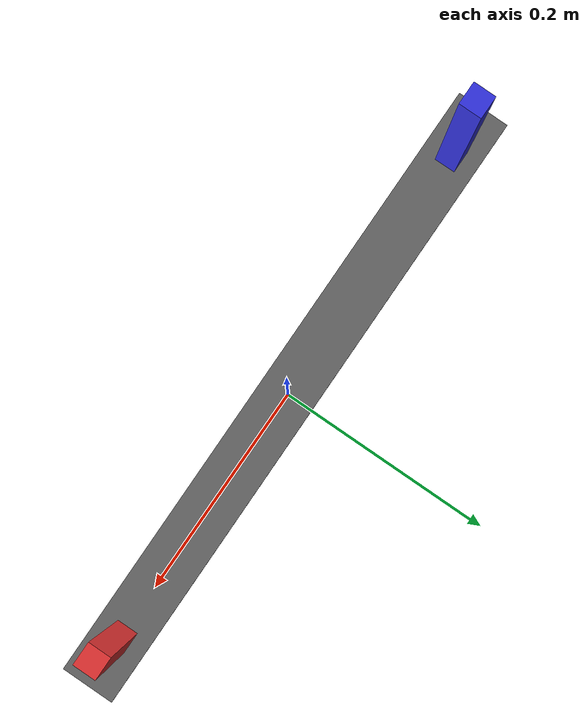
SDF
<?xml version="1.0" ?>
<!--
  Break Beam Sensor for Assembly Line
  Detects objects passing through the beam using a ray sensor.
-->
<sdf version="1.6">
  <model name="break_beam_sensor">
    <static>true</static>

    <!-- Emitter side -->
    <link name="emitter_link">
      <pose>-0.25 0 0.1 0 0 0</pose>

      <visual name="emitter_visual">
        <geometry>
          <box>
            <size>0.02 0.02 0.2</size>
          </box>
        </geometry>
        <material>
          <ambient>0.1 0.1 0.8 1</ambient>
          <diffuse>0.2 0.2 0.9 1</diffuse>
        </material>
      </visual>

      <collision name="emitter_collision">
        <geometry>
          <box>
            <size>0.02 0.02 0.2</size>
          </box>
        </geometry>
      </collision>

      <!-- Ray sensor for break beam detection -->
      <sensor name="break_beam" type="ray">
        <pose>0.01 0 0.05 0 0 0</pose>
        <always_on>true</always_on>
        <update_rate>100</update_rate>
        <visualize>true</visualize>

        <ray>
          <scan>
            <horizontal>
              <samples>1</samples>
              <resolution>1</resolution>
              <min_angle>0</min_angle>
              <max_angle>0</max_angle>
            </horizontal>
            <vertical>
              <samples>1</samples>
              <resolution>1</resolution>
              <min_angle>0</min_angle>
              <max_angle>0</max_angle>
            </vertical>
          </scan>
          <range>
            <min>0.01</min>
            <max>0.6</max>
            <resolution>0.001</resolution>
          </range>
          <noise>
            <type>gaussian</type>
            <mean>0</mean>
            <stddev>0.001</stddev>
          </noise>
        </ray>

        <plugin name="break_beam_sensor_plugin" filename="libgazebo_ros_ray_sensor.so">
          <ros>
            <namespace>station</namespace>
            <remapping>~/out:=break_beam</remapping>
          </ros>
          <output_type>sensor_msgs/Range</output_type>
          <frame_name>break_beam_frame</frame_name>
        </plugin>
      </sensor>
    </link>

    <!-- Receiver side -->
    <link name="receiver_link">
      <pose>0.25 0 0.1 0 0 0</pose>

      <visual name="receiver_visual">
        <geometry>
          <box>
            <size>0.02 0.02 0.2</size>
          </box>
        </geometry>
        <material>
          <ambient>0.8 0.1 0.1 1</ambient>
          <diffuse>0.9 0.2 0.2 1</diffuse>
        </material>
      </visual>

      <collision name="receiver_collision">
        <geometry>
          <box>
            <size>0.02 0.02 0.2</size>
          </box>
        </geometry>
      </collision>
    </link>

    <!-- Base plate -->
    <link name="base_link">
      <pose>0 0 0 0 0 0</pose>

      <visual name="base_visual">
        <geometry>
          <box>
            <size>0.6 0.05 0.01</size>
          </box>
        </geometry>
        <material>
          <ambient>0.3 0.3 0.3 1</ambient>
          <diffuse>0.4 0.4 0.4 1</diffuse>
        </material>
      </visual>

      <collision name="base_collision">
        <geometry>
          <box>
            <size>0.6 0.05 0.01</size>
          </box>
        </geometry>
      </collision>
    </link>

    <!-- Joints -->
    <joint name="emitter_joint" type="fixed">
      <parent>base_link</parent>
      <child>emitter_link</child>
    </joint>

    <joint name="receiver_joint" type="fixed">
      <parent>base_link</parent>
      <child>receiver_link</child>
    </joint>

  </model>
</sdf>
